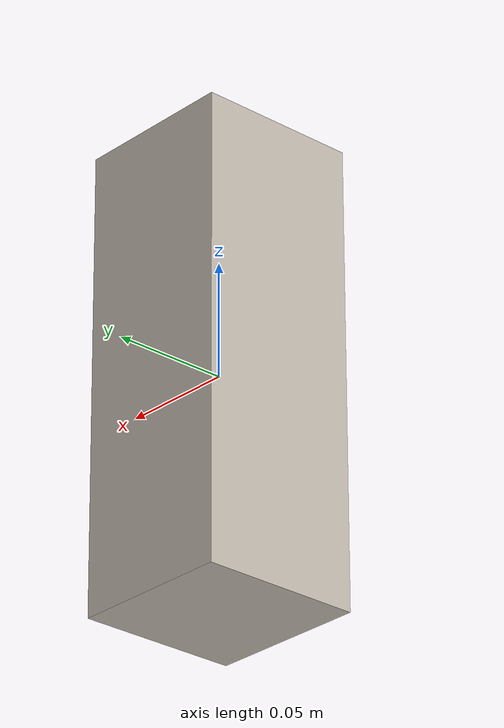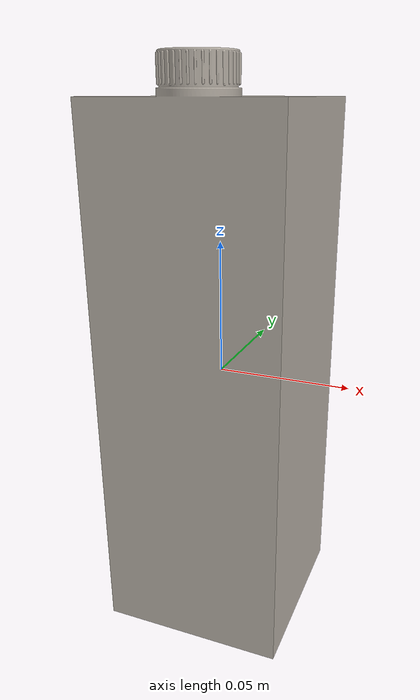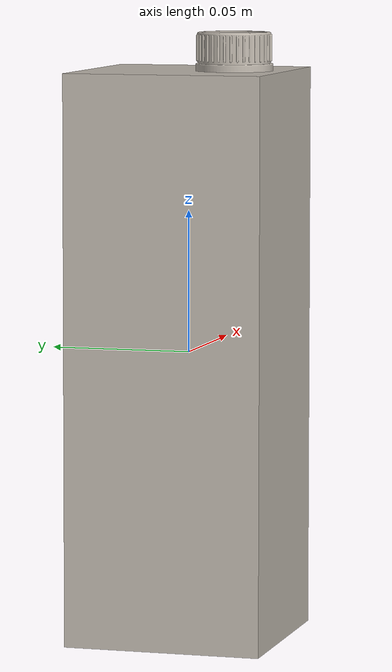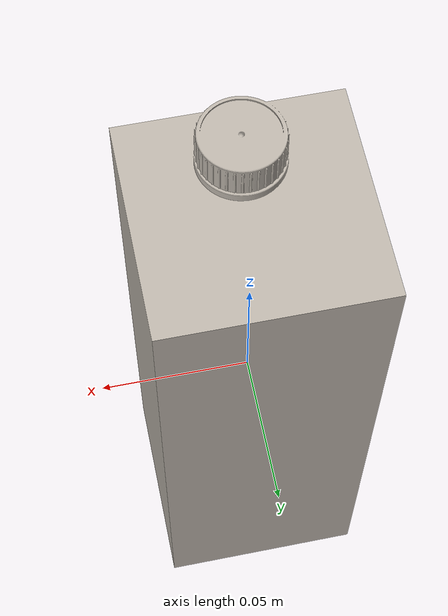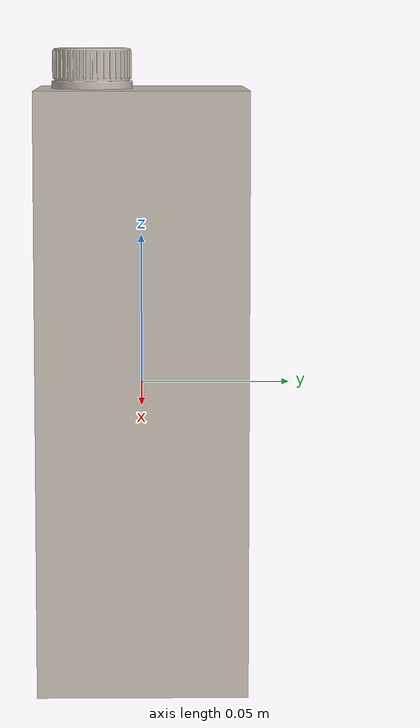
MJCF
<?xml version="1.0" ?>
<mujoco model="carton">
  <asset>
    <mesh file="libero_carton.obj" name="carton_mesh" scale="0.01 0.01 0.01"/>
    <texture file="material_0.png" type="2d" name="tex-carton"/>
    <material name="carton" texture="tex-carton" texuniform="true"/>
  </asset>
  <worldbody>
    <body>
      <body name="object">
        <geom pos="0 0 0" euler="90 0 0" material="carton" mesh="carton_mesh" type="mesh" group="1" contype="0" conaffinity="0"/>
        <inertial pos="0 0 0" mass="0.9878501347949259" diaginertia="0.0005 0.0005 0.0005"/>
      </body>
      <site pos="0 0 -0.10084312351278453" rgba="0 0 0 0" size="0.005" name="bottom_site"/>
      <site pos="0 0 0.11252786724038931" rgba="0 0 0 0" size="0.005" name="top_site"/>
      <site pos="0.034999999967583385 0.034868879705257275 0" rgba="0 0 0 0" size="0.005" name="horizontal_radius_site"/>
    </body>
  </worldbody>
</mujoco>
